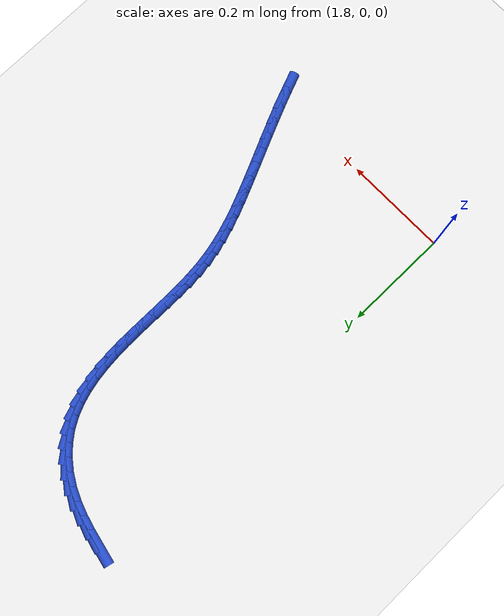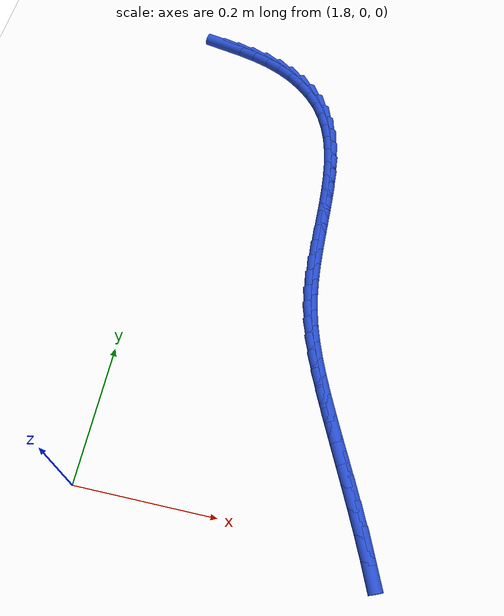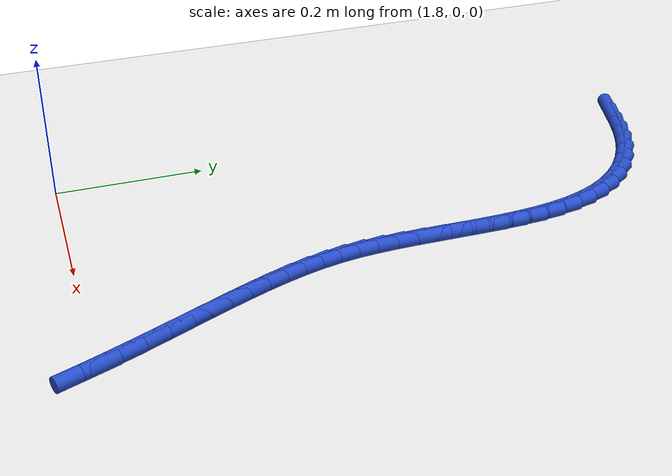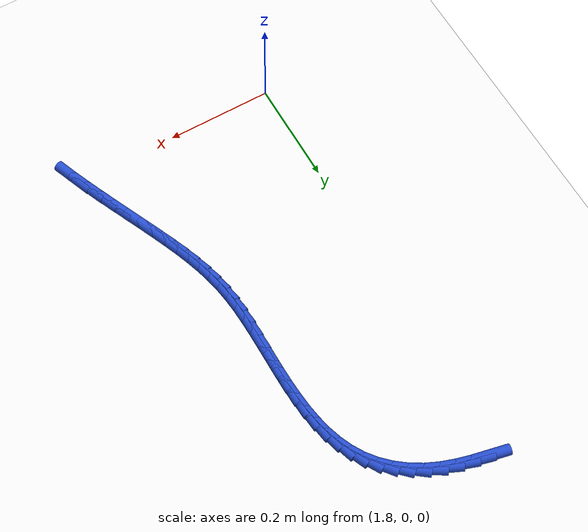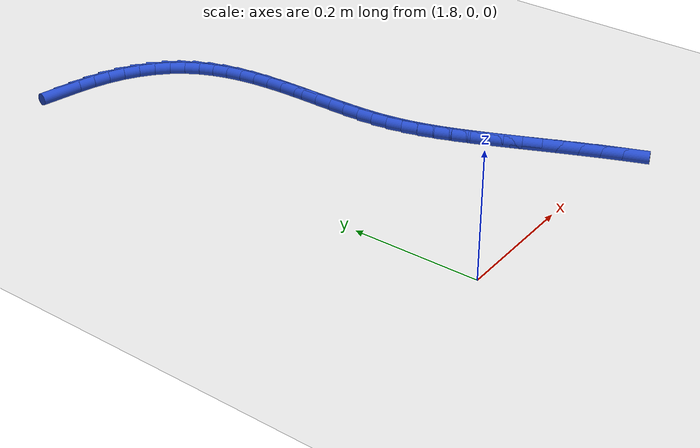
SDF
<sdf version="1.6">
 <world name="default">
  <model name="ground_plane">
   <static>1</static>
   <link name="link">
    <collision name="collision">
     <geometry><plane><normal>0 0 1</normal><size>100 100</size></plane></geometry>
     <surface><friction><ode><mu>100</mu><mu2>50</mu2></ode></friction></surface>
    </collision>
    <visual name="visual">
     <cast_shadows>0</cast_shadows>
     <geometry><plane><normal>0 0 1</normal><size>100 100</size></plane></geometry>
     <material>
      <script><uri>file://media/materials/scripts/gazebo.material</uri><name>Gazebo/WhiteGlow</name></script>
     </material>
    </visual>
   </link>
  </model>
  <model name="line">
   <link name="link_108">
    <pose>1.8334283017768798 0.8137020593414895 0.01 0 1.57 -0.21937469631753076</pose>
    <collision name="collision">
     <geometry><cylinder><radius>0.01</radius><length>0.08</length></cylinder></geometry>
    </collision>
    <visual name="visual">
     <material>
      <script><name>Gazebo/Blue</name><uri>file://media/materials/scripts/gazebo.material</uri></script>
     </material>
     <geometry><cylinder><radius>0.01</radius><length>0.08</length></cylinder></geometry>
    </visual>
   </link>
   <link name="link_109">
    <pose>1.860743799144917 0.8076117157180235 0.01 0 1.57 -0.26641261627031837</pose>
    <collision name="collision">
     <geometry><cylinder><radius>0.01</radius><length>0.08</length></cylinder></geometry>
    </collision>
    <visual name="visual">
     <material>
      <script><name>Gazebo/Blue</name><uri>file://media/materials/scripts/gazebo.material</uri></script>
     </material>
     <geometry><cylinder><radius>0.01</radius><length>0.08</length></cylinder></geometry>
    </visual>
   </link>
   <link name="link_110">
    <pose>1.8875329782333288 0.8003009543594929 0.01 0 1.57 -0.33528056452423133</pose>
    <collision name="collision">
     <geometry><cylinder><radius>0.01</radius><length>0.08</length></cylinder></geometry>
    </collision>
    <visual name="visual">
     <material>
      <script><name>Gazebo/Blue</name><uri>file://media/materials/scripts/gazebo.material</uri></script>
     </material>
     <geometry><cylinder><radius>0.01</radius><length>0.08</length></cylinder></geometry>
    </visual>
   </link>
   <link name="link_111">
    <pose>1.913466180318133 0.7912649006458448 0.01 0 1.57 -0.42720664627439814</pose>
    <collision name="collision">
     <geometry><cylinder><radius>0.01</radius><length>0.08</length></cylinder></geometry>
    </collision>
    <visual name="visual">
     <material>
      <script><name>Gazebo/Blue</name><uri>file://media/materials/scripts/gazebo.material</uri></script>
     </material>
     <geometry><cylinder><radius>0.01</radius><length>0.08</length></cylinder></geometry>
    </visual>
   </link>
   <link name="link_112">
    <pose>1.9382137407977864 0.7799987110487203 0.01 0 1.57 -0.5378786523895778</pose>
    <collision name="collision">
     <geometry><cylinder><radius>0.01</radius><length>0.08</length></cylinder></geometry>
    </collision>
    <visual name="visual">
     <material>
      <script><name>Gazebo/Blue</name><uri>file://media/materials/scripts/gazebo.material</uri></script>
     </material>
     <geometry><cylinder><radius>0.01</radius><length>0.08</length></cylinder></geometry>
    </visual>
   </link>
   <link name="link_113">
    <pose>1.9614157448701406 0.766157562492252 0.01 0 1.57 -0.6534319787543768</pose>
    <collision name="collision">
     <geometry><cylinder><radius>0.01</radius><length>0.08</length></cylinder></geometry>
    </collision>
    <visual name="visual">
     <material>
      <script><name>Gazebo/Blue</name><uri>file://media/materials/scripts/gazebo.material</uri></script>
     </material>
     <geometry><cylinder><radius>0.01</radius><length>0.08</length></cylinder></geometry>
    </visual>
   </link>
   <link name="link_114">
    <pose>1.9826115801939752 0.7499293115338902 0.01 0 1.57 -0.7748291459596391</pose>
    <collision name="collision">
     <geometry><cylinder><radius>0.01</radius><length>0.08</length></cylinder></geometry>
    </collision>
    <visual name="visual">
     <material>
      <script><name>Gazebo/Blue</name><uri>file://media/materials/scripts/gazebo.material</uri></script>
     </material>
     <geometry><cylinder><radius>0.01</radius><length>0.08</length></cylinder></geometry>
    </visual>
   </link>
   <link name="link_115">
    <pose>2.0013197075404197 0.7316125158161726 0.01 0 1.57 -0.9059943664940129</pose>
    <collision name="collision">
     <geometry><cylinder><radius>0.01</radius><length>0.08</length></cylinder></geometry>
    </collision>
    <visual name="visual">
     <material>
      <script><name>Gazebo/Blue</name><uri>file://media/materials/scripts/gazebo.material</uri></script>
     </material>
     <geometry><cylinder><radius>0.01</radius><length>0.08</length></cylinder></geometry>
    </visual>
   </link>
   <link name="link_116">
    <pose>2.017083032495335 0.7115018250949771 0.01 0 1.57 -1.0381903825209495</pose>
    <collision name="collision">
     <geometry><cylinder><radius>0.01</radius><length>0.08</length></cylinder></geometry>
    </collision>
    <visual name="visual">
     <material>
      <script><name>Gazebo/Blue</name><uri>file://media/materials/scripts/gazebo.material</uri></script>
     </material>
     <geometry><cylinder><radius>0.01</radius><length>0.08</length></cylinder></geometry>
    </visual>
   </link>
   <link name="link_117">
    <pose>2.0298595363424385 0.6898255327720768 0.01 0 1.57 -1.1583223849385311</pose>
    <collision name="collision">
     <geometry><cylinder><radius>0.01</radius><length>0.08</length></cylinder></geometry>
    </collision>
    <visual name="visual">
     <material>
      <script><name>Gazebo/Blue</name><uri>file://media/materials/scripts/gazebo.material</uri></script>
     </material>
     <geometry><cylinder><radius>0.01</radius><length>0.08</length></cylinder></geometry>
    </visual>
   </link>
   <link name="link_118">
    <pose>2.039953986551203 0.6667564930436735 0.01 0 1.57 -1.2627819025740536</pose>
    <collision name="collision">
     <geometry><cylinder><radius>0.01</radius><length>0.08</length></cylinder></geometry>
    </collision>
    <visual name="visual">
     <material>
      <script><name>Gazebo/Blue</name><uri>file://media/materials/scripts/gazebo.material</uri></script>
     </material>
     <geometry><cylinder><radius>0.01</radius><length>0.08</length></cylinder></geometry>
    </visual>
   </link>
   <link name="link_119">
    <pose>2.047681799016848 0.6424658577882632 0.01 0 1.57 -1.3504268026802349</pose>
    <collision name="collision">
     <geometry><cylinder><radius>0.01</radius><length>0.08</length></cylinder></geometry>
    </collision>
    <visual name="visual">
     <material>
      <script><name>Gazebo/Blue</name><uri>file://media/materials/scripts/gazebo.material</uri></script>
     </material>
     <geometry><cylinder><radius>0.01</radius><length>0.08</length></cylinder></geometry>
    </visual>
   </link>
   <link name="link_120">
    <pose>2.053358389634596 0.6171247788843434 0.01 0 1.57 -1.4216181048584207</pose>
    <collision name="collision">
     <geometry><cylinder><radius>0.01</radius><length>0.08</length></cylinder></geometry>
    </collision>
    <visual name="visual">
     <material>
      <script><name>Gazebo/Blue</name><uri>file://media/materials/scripts/gazebo.material</uri></script>
     </material>
     <geometry><cylinder><radius>0.01</radius><length>0.08</length></cylinder></geometry>
    </visual>
   </link>
   <link name="link_121">
    <pose>2.0572991742996662 0.5909044082104101 0.01 0 1.57 -1.477472436813044</pose>
    <collision name="collision">
     <geometry><cylinder><radius>0.01</radius><length>0.08</length></cylinder></geometry>
    </collision>
    <visual name="visual">
     <material>
      <script><name>Gazebo/Blue</name><uri>file://media/materials/scripts/gazebo.material</uri></script>
     </material>
     <geometry><cylinder><radius>0.01</radius><length>0.08</length></cylinder></geometry>
    </visual>
   </link>
   <link name="link_122">
    <pose>2.05981956890728 0.5639758976449606 0.01 0 1.57 -1.519307386661663</pose>
    <collision name="collision">
     <geometry><cylinder><radius>0.01</radius><length>0.08</length></cylinder></geometry>
    </collision>
    <visual name="visual">
     <material>
      <script><name>Gazebo/Blue</name><uri>file://media/materials/scripts/gazebo.material</uri></script>
     </material>
     <geometry><cylinder><radius>0.01</radius><length>0.08</length></cylinder></geometry>
    </visual>
   </link>
   <link name="link_123">
    <pose>2.0612349893526583 0.5365103990664912 0.01 0 1.57 -1.5483124352320383</pose>
    <collision name="collision">
     <geometry><cylinder><radius>0.01</radius><length>0.08</length></cylinder></geometry>
    </collision>
    <visual name="visual">
     <material>
      <script><name>Gazebo/Blue</name><uri>file://media/materials/scripts/gazebo.material</uri></script>
     </material>
     <geometry><cylinder><radius>0.01</radius><length>0.08</length></cylinder></geometry>
    </visual>
   </link>
   <link name="link_124">
    <pose>2.061860851531021 0.5086790643534987 0.01 0 1.57 -1.5653828456777732</pose>
    <collision name="collision">
     <geometry><cylinder><radius>0.01</radius><length>0.08</length></cylinder></geometry>
    </collision>
    <visual name="visual">
     <material>
      <script><name>Gazebo/Blue</name><uri>file://media/materials/scripts/gazebo.material</uri></script>
     </material>
     <geometry><cylinder><radius>0.01</radius><length>0.08</length></cylinder></geometry>
    </visual>
   </link>
   <link name="link_125">
    <pose>2.06201257133759 0.4806530453844791 0.01 0 1.57 1.5705465306476307</pose>
    <collision name="collision">
     <geometry><cylinder><radius>0.01</radius><length>0.08</length></cylinder></geometry>
    </collision>
    <visual name="visual">
     <material>
      <script><name>Gazebo/Blue</name><uri>file://media/materials/scripts/gazebo.material</uri></script>
     </material>
     <geometry><cylinder><radius>0.01</radius><length>0.08</length></cylinder></geometry>
    </visual>
   </link>
   <link name="link_126">
    <pose>2.0620055646675852 0.4526034940379294 0.01 0 1.57 -1.56543177664147</pose>
    <collision name="collision">
     <geometry><cylinder><radius>0.01</radius><length>0.08</length></cylinder></geometry>
    </collision>
    <visual name="visual">
     <material>
      <script><name>Gazebo/Blue</name><uri>file://media/materials/scripts/gazebo.material</uri></script>
     </material>
     <geometry><cylinder><radius>0.01</radius><length>0.08</length></cylinder></geometry>
    </visual>
   </link>
   <link name="link_127">
    <pose>2.0621552474162277 0.4247015621923463 0.01 0 1.57 -1.5482578372812867</pose>
    <collision name="collision">
     <geometry><cylinder><radius>0.01</radius><length>0.08</length></cylinder></geometry>
    </collision>
    <visual name="visual">
     <material>
      <script><name>Gazebo/Blue</name><uri>file://media/materials/scripts/gazebo.material</uri></script>
     </material>
     <geometry><cylinder><radius>0.01</radius><length>0.08</length></cylinder></geometry>
    </visual>
   </link>
   <link name="link_128">
    <pose>2.0627770354787387 0.39711840172622626 0.01 0 1.57 -1.518826153145357</pose>
    <collision name="collision">
     <geometry><cylinder><radius>0.01</radius><length>0.08</length></cylinder></geometry>
    </collision>
    <visual name="visual">
     <material>
      <script><name>Gazebo/Blue</name><uri>file://media/materials/scripts/gazebo.material</uri></script>
     </material>
     <geometry><cylinder><radius>0.01</radius><length>0.08</length></cylinder></geometry>
    </visual>
   </link>
   <link name="link_129">
    <pose>2.0641863447503375 0.3700251645180659 0.01 0 1.57 -1.4760359260544635</pose>
    <collision name="collision">
     <geometry><cylinder><radius>0.01</radius><length>0.08</length></cylinder></geometry>
    </collision>
    <visual name="visual">
     <material>
      <script><name>Gazebo/Blue</name><uri>file://media/materials/scripts/gazebo.material</uri></script>
     </material>
     <geometry><cylinder><radius>0.01</radius><length>0.08</length></cylinder></geometry>
    </visual>
   </link>
   <link name="link_130">
    <pose>2.0666985911262463 0.343593002446362 0.01 0 1.57 -1.4192462014015974</pose>
    <collision name="collision">
     <geometry><cylinder><radius>0.01</radius><length>0.08</length></cylinder></geometry>
    </collision>
    <visual name="visual">
     <material>
      <script><name>Gazebo/Blue</name><uri>file://media/materials/scripts/gazebo.material</uri></script>
     </material>
     <geometry><cylinder><radius>0.01</radius><length>0.08</length></cylinder></geometry>
    </visual>
   </link>
   <link name="link_131">
    <pose>2.0706115934707103 0.31797112223829643 0.01 0 1.57 -1.358227458449177</pose>
    <collision name="collision">
     <geometry><cylinder><radius>0.01</radius><length>0.08</length></cylinder></geometry>
    </collision>
    <visual name="visual">
     <material>
      <script><name>Gazebo/Blue</name><uri>file://media/materials/scripts/gazebo.material</uri></script>
     </material>
     <geometry><cylinder><radius>0.01</radius><length>0.08</length></cylinder></geometry>
    </visual>
   </link>
   <link name="link_132">
    <pose>2.0759956928041854 0.2930250443725131 0.01 0 1.57 -1.3023745750225335</pose>
    <collision name="collision">
     <geometry><cylinder><radius>0.01</radius><length>0.08</length></cylinder></geometry>
    </collision>
    <visual name="visual">
     <material>
      <script><name>Gazebo/Blue</name><uri>file://media/materials/scripts/gazebo.material</uri></script>
     </material>
     <geometry><cylinder><radius>0.01</radius><length>0.08</length></cylinder></geometry>
    </visual>
   </link>
   <link name="link_133">
    <pose>2.0827628029694267 0.2684227157487979 0.01 0 1.57 -1.254155458404103</pose>
    <collision name="collision">
     <geometry><cylinder><radius>0.01</radius><length>0.08</length></cylinder></geometry>
    </collision>
    <visual name="visual">
     <material>
      <script><name>Gazebo/Blue</name><uri>file://media/materials/scripts/gazebo.material</uri></script>
     </material>
     <geometry><cylinder><radius>0.01</radius><length>0.08</length></cylinder></geometry>
    </visual>
   </link>
   <link name="link_134">
    <pose>2.0908216199740886 0.24382807032416778 0.01 0 1.57 -1.2150865741512633</pose>
    <collision name="collision">
     <geometry><cylinder><radius>0.01</radius><length>0.08</length></cylinder></geometry>
    </collision>
    <visual name="visual">
     <material>
      <script><name>Gazebo/Blue</name><uri>file://media/materials/scripts/gazebo.material</uri></script>
     </material>
     <geometry><cylinder><radius>0.01</radius><length>0.08</length></cylinder></geometry>
    </visual>
   </link>
   <link name="link_135">
    <pose>2.100080839825827 0.2189050420556414 0.01 0 1.57 -1.1858060812863538</pose>
    <collision name="collision">
     <geometry><cylinder><radius>0.01</radius><length>0.08</length></cylinder></geometry>
    </collision>
    <visual name="visual">
     <material>
      <script><name>Gazebo/Blue</name><uri>file://media/materials/scripts/gazebo.material</uri></script>
     </material>
     <geometry><cylinder><radius>0.01</radius><length>0.08</length></cylinder></geometry>
    </visual>
   </link>
   <link name="link_136">
    <pose>2.110449158532295 0.1933175649002367 0.01 0 1.57 -1.1661689161161561</pose>
    <collision name="collision">
     <geometry><cylinder><radius>0.01</radius><length>0.08</length></cylinder></geometry>
    </collision>
    <visual name="visual">
     <material>
      <script><name>Gazebo/Blue</name><uri>file://media/materials/scripts/gazebo.material</uri></script>
     </material>
     <geometry><cylinder><radius>0.01</radius><length>0.08</length></cylinder></geometry>
    </visual>
   </link>
   <link name="link_137">
    <pose>2.1218339251494007 0.16673370064642093 0.01 0 1.57 -1.1547405110036004</pose>
    <collision name="collision">
     <geometry><cylinder><radius>0.01</radius><length>0.08</length></cylinder></geometry>
    </collision>
    <visual name="visual">
     <material>
      <script><name>Gazebo/Blue</name><uri>file://media/materials/scripts/gazebo.material</uri></script>
     </material>
     <geometry><cylinder><radius>0.01</radius><length>0.08</length></cylinder></geometry>
    </visual>
   </link>
   <link name="link_138">
    <pose>2.134073466323942 0.13903303526813196 0.01 0 1.57 -1.1494315284132404</pose>
    <collision name="collision">
     <geometry><cylinder><radius>0.01</radius><length>0.08</length></cylinder></geometry>
    </collision>
    <visual name="visual">
     <material>
      <script><name>Gazebo/Blue</name><uri>file://media/materials/scripts/gazebo.material</uri></script>
     </material>
     <geometry><cylinder><radius>0.01</radius><length>0.08</length></cylinder></geometry>
    </visual>
   </link>
   <link name="link_139">
    <pose>2.1469054052794756 0.11040376769340454 0.01 0 1.57 -1.1493991488767341</pose>
    <collision name="collision">
     <geometry><cylinder><radius>0.01</radius><length>0.08</length></cylinder></geometry>
    </collision>
    <visual name="visual">
     <material>
      <script><name>Gazebo/Blue</name><uri>file://media/materials/scripts/gazebo.material</uri></script>
     </material>
     <geometry><cylinder><radius>0.01</radius><length>0.08</length></cylinder></geometry>
    </visual>
   </link>
   <link name="link_140">
    <pose>2.160059397285015 0.08105851522564902 0.01 0 1.57 -1.1542617133432242</pose>
    <collision name="collision">
     <geometry><cylinder><radius>0.01</radius><length>0.08</length></cylinder></geometry>
    </collision>
    <visual name="visual">
     <material>
      <script><name>Gazebo/Blue</name><uri>file://media/materials/scripts/gazebo.material</uri></script>
     </material>
     <geometry><cylinder><radius>0.01</radius><length>0.08</length></cylinder></geometry>
    </visual>
   </link>
   <link name="link_141">
    <pose>2.1732650976095735 0.05120989516827446 0.01 0 1.57 -1.1639387005230097</pose>
    <collision name="collision">
     <geometry><cylinder><radius>0.01</radius><length>0.08</length></cylinder></geometry>
    </collision>
    <visual name="visual">
     <material>
      <script><name>Gazebo/Blue</name><uri>file://media/materials/scripts/gazebo.material</uri></script>
     </material>
     <geometry><cylinder><radius>0.01</radius><length>0.08</length></cylinder></geometry>
    </visual>
   </link>
   <link name="link_142">
    <pose>2.186252161522162 0.021070524824691086 0.01 0 1.57 -1.17861757991251</pose>
    <collision name="collision">
     <geometry><cylinder><radius>0.01</radius><length>0.08</length></cylinder></geometry>
    </collision>
    <visual name="visual">
     <material>
      <script><name>Gazebo/Blue</name><uri>file://media/materials/scripts/gazebo.material</uri></script>
     </material>
     <geometry><cylinder><radius>0.01</radius><length>0.08</length></cylinder></geometry>
    </visual>
   </link>
   <link name="link_143">
    <pose>2.1987502442917943 -0.009146978501691137 0.01 0 1.57 -1.1987562000145573</pose>
    <collision name="collision">
     <geometry><cylinder><radius>0.01</radius><length>0.08</length></cylinder></geometry>
    </collision>
    <visual name="visual">
     <material>
      <script><name>Gazebo/Blue</name><uri>file://media/materials/scripts/gazebo.material</uri></script>
     </material>
     <geometry><cylinder><radius>0.01</radius><length>0.08</length></cylinder></geometry>
    </visual>
   </link>
  </model>
 </world>
</sdf>
